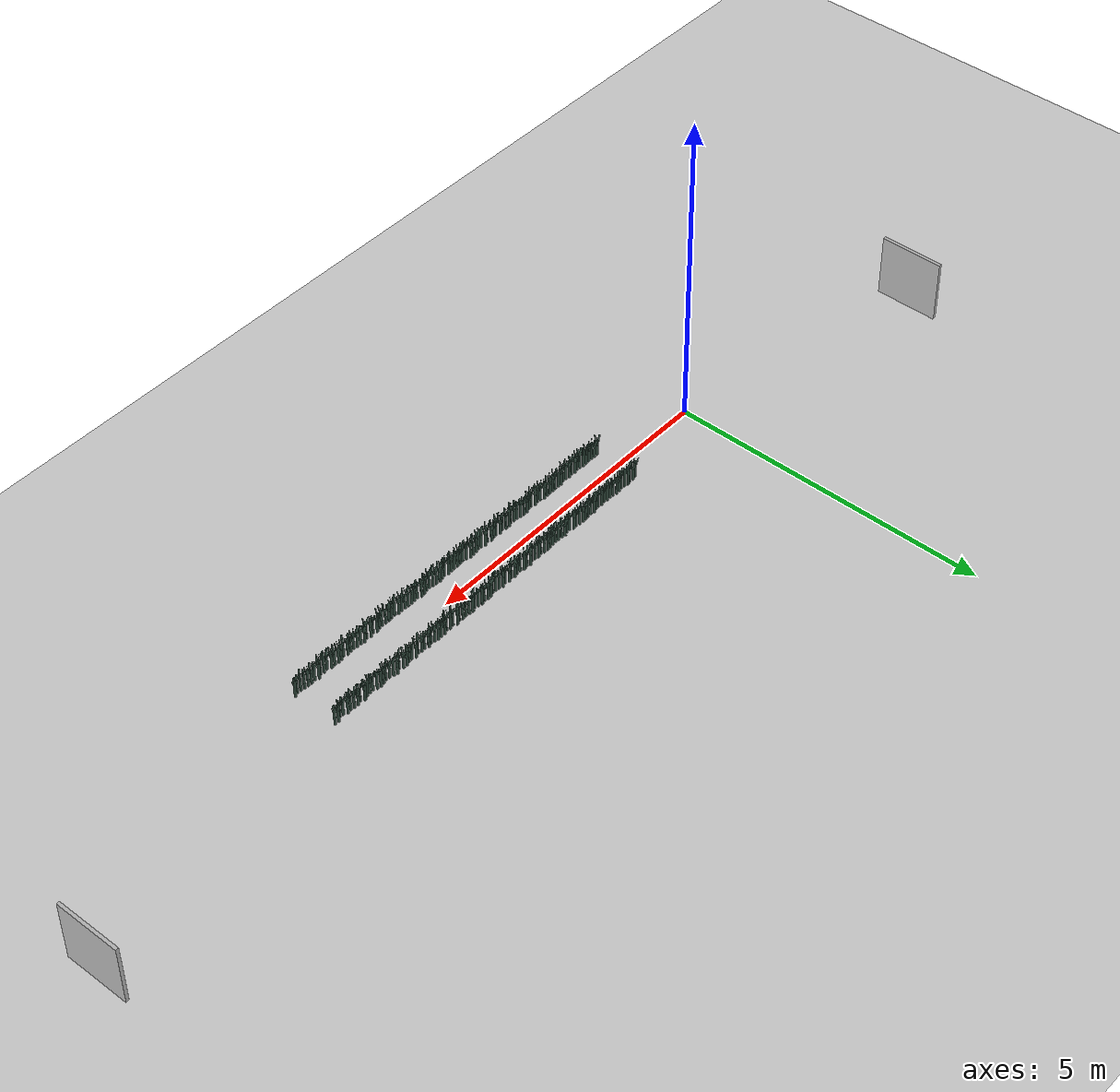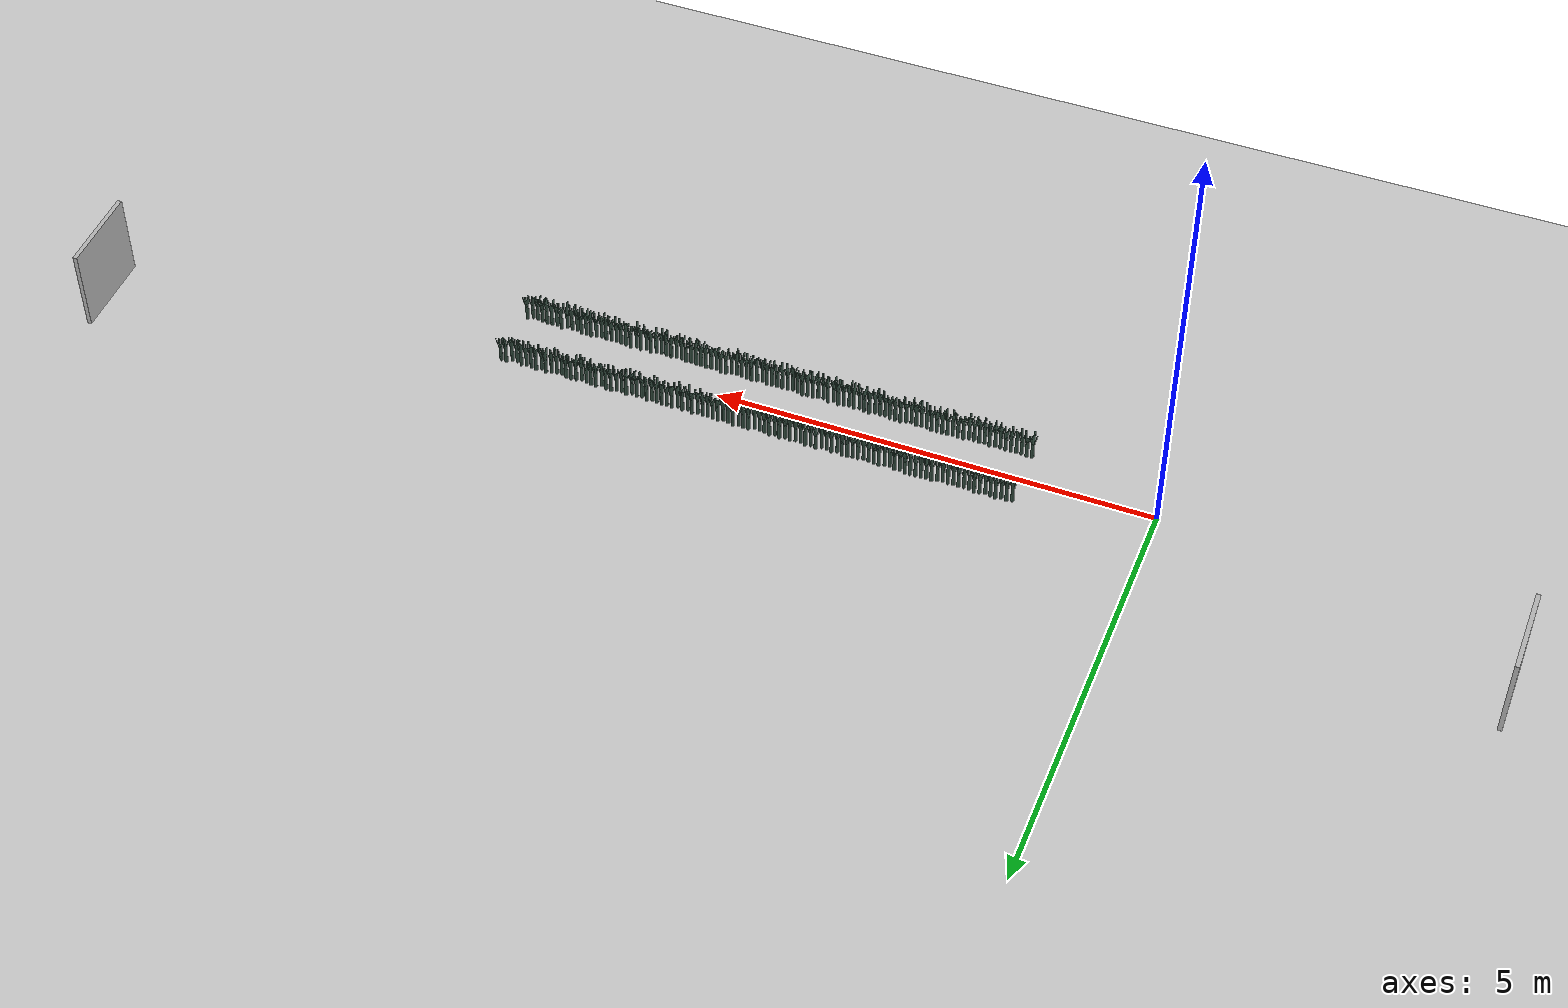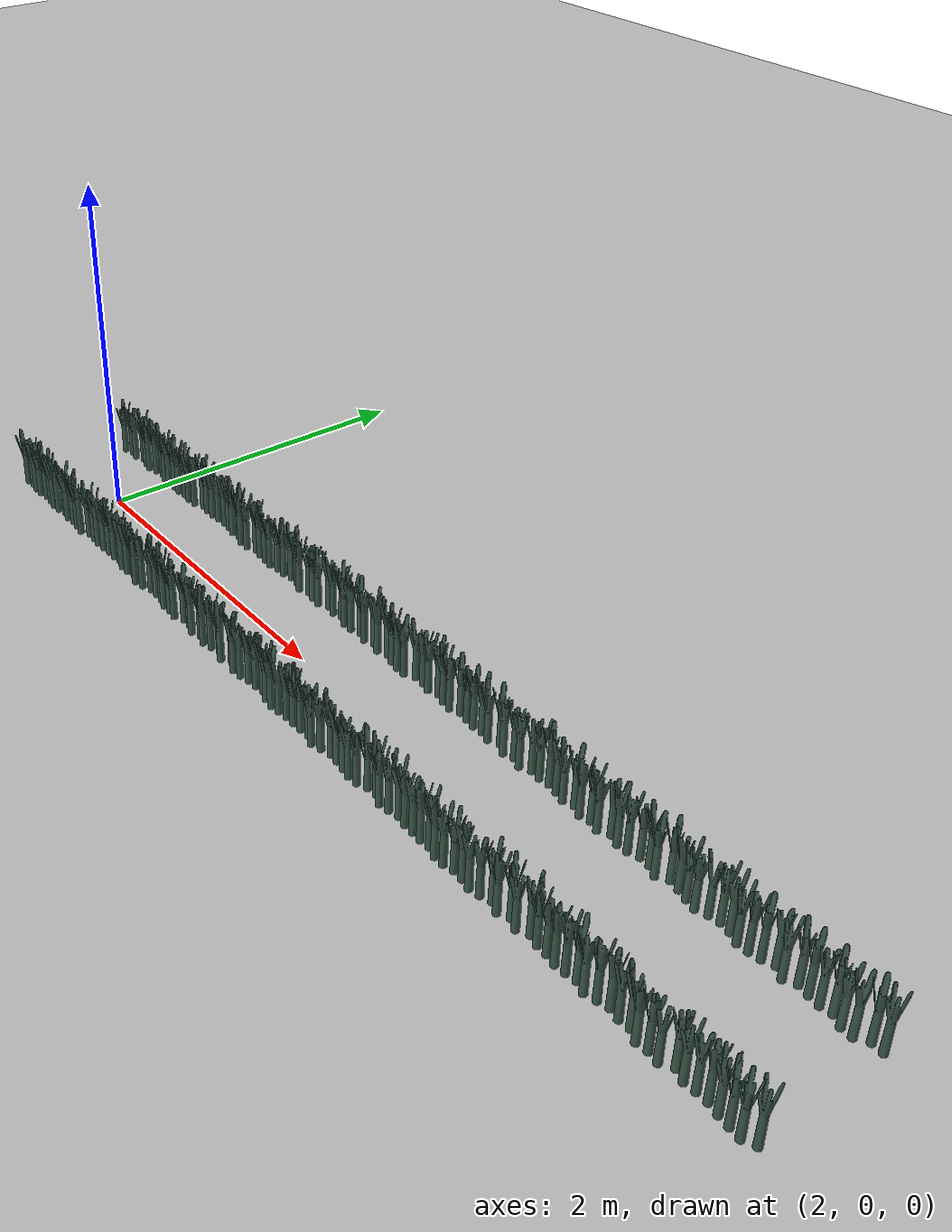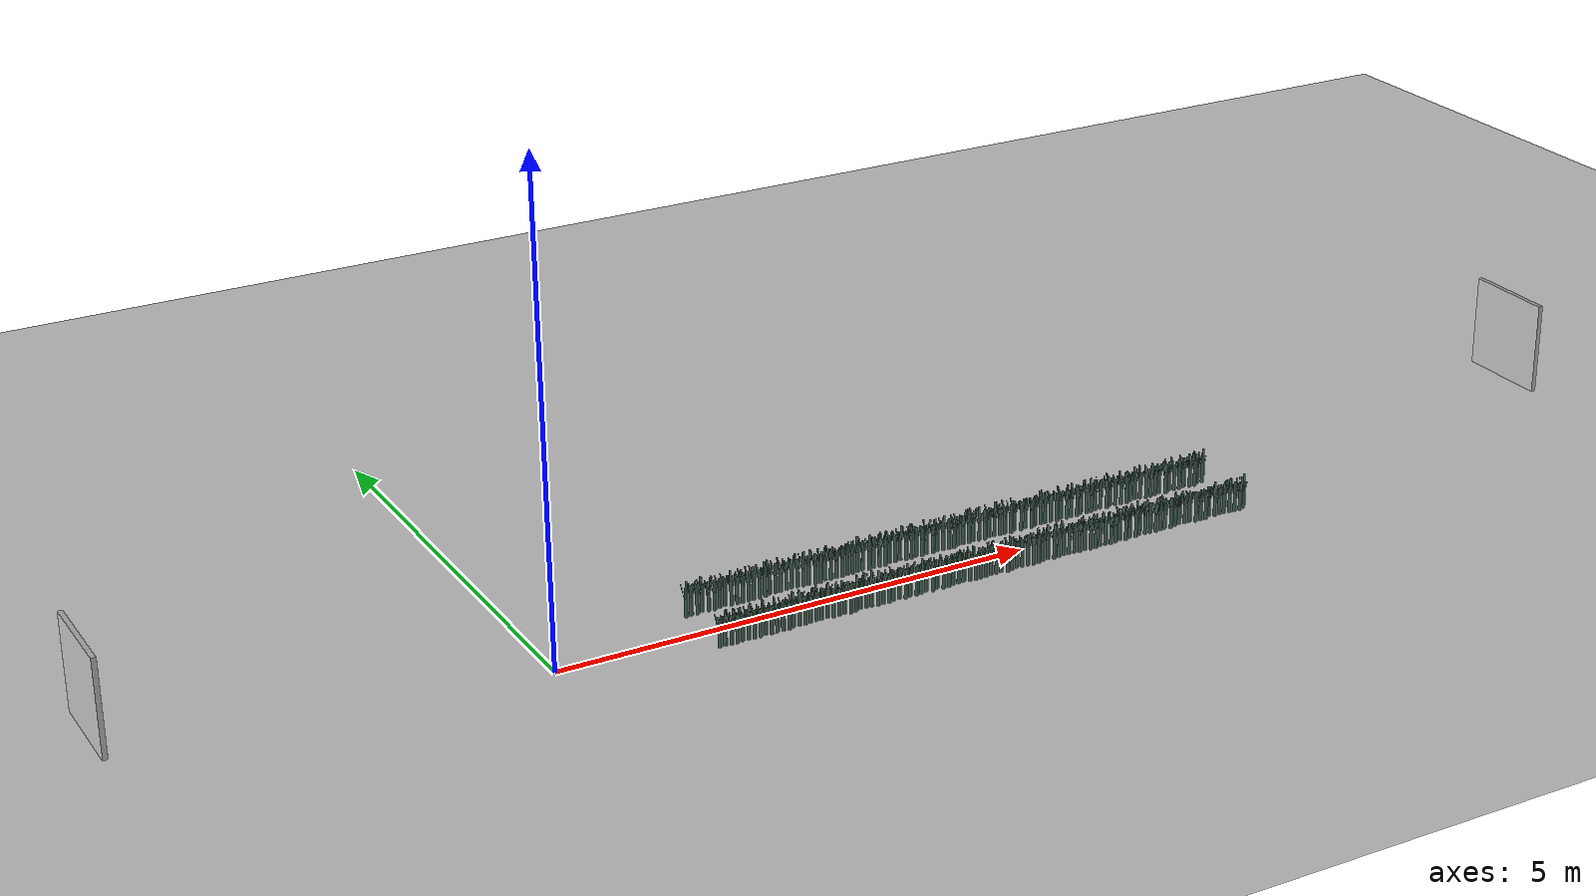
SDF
<sdf version="1.6">
 <world name="default">
  <light name="sun" type="directional">
   <pose>0 0 10 0 -0 0</pose>
   <diffuse>0.5 0.5 0.5 1</diffuse>
   <specular>0.1 0.1 0.1 1</specular>
   <attenuation>
    <range>1000</range>
    <constant>0.9</constant>
    <linear>0.01</linear>
    <quadratic>0.001</quadratic>
   </attenuation>
   <direction>0.9 0.5 -1</direction>
  </light>
  <scene><background>130 200 255 1</background><ambient>130 140 140 1</ambient></scene>
  <include><uri>model://Sign</uri><pose>12 1 0 0 0 0</pose><static>1</static></include>
  <include><uri>model://Sign</uri><pose>-4 1 0 0 0 0</pose><static>1</static></include>
  <include><uri>model://dirt_plane</uri></include>
  <include>
   <uri>model://Leek</uri>
   <pose>1.500000 0.331958 0.15 0 0 -162.377549</pose>
   <static>0</static>
  </include>
  <include><uri>model://Leek</uri><pose>1.560000 0.349821 0.15 0 0 -1.608774</pose><static>0</static></include>
  <include>
   <uri>model://Leek</uri>
   <pose>1.620000 0.337868 0.15 0 0 -109.190535</pose>
   <static>0</static>
  </include>
  <include><uri>model://Leek</uri><pose>1.680000 0.361320 0.15 0 0 101.880763</pose><static>0</static></include>
  <include><uri>model://Leek</uri><pose>1.740000 0.344986 0.15 0 0 -45.128394</pose><static>0</static></include>
  <include>
   <uri>model://Leek</uri>
   <pose>1.800000 0.332855 0.15 0 0 -154.300885</pose>
   <static>0</static>
  </include>
  <include><uri>model://Leek</uri><pose>1.860000 0.348929 0.15 0 0 -9.639895</pose><static>0</static></include>
  <include><uri>model://Leek</uri><pose>1.920000 0.360113 0.15 0 0 91.018937</pose><static>0</static></include>
  <include><uri>model://Leek</uri><pose>1.980000 0.340891 0.15 0 0 -81.981810</pose><static>0</static></include>
  <include>
   <uri>model://Leek</uri>
   <pose>2.040000 0.335884 0.15 0 0 -127.042875</pose>
   <static>0</static>
  </include>
  <include><uri>model://Leek</uri><pose>2.100000 0.341889 0.15 0 0 -72.995884</pose><static>0</static></include>
  <include>
   <uri>model://Leek</uri>
   <pose>2.160000 0.334656 0.15 0 0 -138.097820</pose>
   <static>0</static>
  </include>
  <include><uri>model://Leek</uri><pose>2.220000 0.343781 0.15 0 0 -55.970178</pose><static>0</static></include>
  <include>
   <uri>model://Leek</uri>
   <pose>2.280000 0.334346 0.15 0 0 -140.890404</pose>
   <static>0</static>
  </include>
  <include>
   <uri>model://Leek</uri>
   <pose>2.340000 0.338092 0.15 0 0 -107.171866</pose>
   <static>0</static>
  </include>
  <include><uri>model://Leek</uri><pose>2.400000 0.365549 0.15 0 0 139.940182</pose><static>0</static></include>
  <include><uri>model://Leek</uri><pose>2.460000 0.355899 0.15 0 0 53.088308</pose><static>0</static></include>
  <include><uri>model://Leek</uri><pose>2.520000 0.356512 0.15 0 0 58.607858</pose><static>0</static></include>
  <include><uri>model://Leek</uri><pose>2.580000 0.362932 0.15 0 0 116.389743</pose><static>0</static></include>
  <include><uri>model://Leek</uri><pose>2.640000 0.368002 0.15 0 0 162.014212</pose><static>0</static></include>
  <include><uri>model://Leek</uri><pose>2.700000 0.361540 0.15 0 0 103.857987</pose><static>0</static></include>
  <include><uri>model://Leek</uri><pose>2.760000 0.347323 0.15 0 0 -24.092315</pose><static>0</static></include>
  <include><uri>model://Leek</uri><pose>2.820000 0.356363 0.15 0 0 57.270035</pose><static>0</static></include>
  <include>
   <uri>model://Leek</uri>
   <pose>2.880000 0.330029 0.15 0 0 -179.739443</pose>
   <static>0</static>
  </include>
  <include>
   <uri>model://Leek</uri>
   <pose>2.940000 0.332557 0.15 0 0 -156.990750</pose>
   <static>0</static>
  </include>
  <include><uri>model://Leek</uri><pose>3.000000 0.357606 0.15 0 0 68.456143</pose><static>0</static></include>
  <include><uri>model://Leek</uri><pose>3.060000 0.345399 0.15 0 0 -41.411660</pose><static>0</static></include>
  <include><uri>model://Leek</uri><pose>3.120000 0.342671 0.15 0 0 -65.963355</pose><static>0</static></include>
  <include>
   <uri>model://Leek</uri>
   <pose>3.180000 0.335121 0.15 0 0 -133.915088</pose>
   <static>0</static>
  </include>
  <include><uri>model://Leek</uri><pose>3.240000 0.348412 0.15 0 0 -14.290134</pose><static>0</static></include>
  <include><uri>model://Leek</uri><pose>3.300000 0.349598 0.15 0 0 -3.621645</pose><static>0</static></include>
  <include><uri>model://Leek</uri><pose>3.360000 0.360611 0.15 0 0 95.494968</pose><static>0</static></include>
  <include><uri>model://Leek</uri><pose>3.420000 0.358651 0.15 0 0 77.859124</pose><static>0</static></include>
  <include>
   <uri>model://Leek</uri>
   <pose>3.480000 0.334055 0.15 0 0 -143.501362</pose>
   <static>0</static>
  </include>
  <include><uri>model://Leek</uri><pose>3.540000 0.357474 0.15 0 0 67.262928</pose><static>0</static></include>
  <include><uri>model://Leek</uri><pose>3.600000 0.343648 0.15 0 0 -57.171757</pose><static>0</static></include>
  <include>
   <uri>model://Leek</uri>
   <pose>3.660000 0.336144 0.15 0 0 -124.706322</pose>
   <static>0</static>
  </include>
  <include><uri>model://Leek</uri><pose>3.720000 0.368524 0.15 0 0 166.711849</pose><static>0</static></include>
  <include><uri>model://Leek</uri><pose>3.780000 0.351778 0.15 0 0 16.003892</pose><static>0</static></include>
  <include><uri>model://Leek</uri><pose>3.840000 0.368921 0.15 0 0 170.285761</pose><static>0</static></include>
  <include><uri>model://Leek</uri><pose>3.900000 0.340977 0.15 0 0 -81.209414</pose><static>0</static></include>
  <include><uri>model://Leek</uri><pose>3.960000 0.342471 0.15 0 0 -67.763424</pose><static>0</static></include>
  <include><uri>model://Leek</uri><pose>4.020000 0.360033 0.15 0 0 90.293969</pose><static>0</static></include>
  <include><uri>model://Leek</uri><pose>4.080000 0.340639 0.15 0 0 -84.253350</pose><static>0</static></include>
  <include><uri>model://Leek</uri><pose>4.140000 0.363982 0.15 0 0 125.840385</pose><static>0</static></include>
  <include><uri>model://Leek</uri><pose>4.200000 0.340104 0.15 0 0 -89.062459</pose><static>0</static></include>
  <include><uri>model://Leek</uri><pose>4.260000 0.362912 0.15 0 0 116.208757</pose><static>0</static></include>
  <include><uri>model://Leek</uri><pose>4.320000 0.345215 0.15 0 0 -43.068767</pose><static>0</static></include>
  <include>
   <uri>model://Leek</uri>
   <pose>4.380000 0.334390 0.15 0 0 -140.494066</pose>
   <static>0</static>
  </include>
  <include>
   <uri>model://Leek</uri>
   <pose>4.440000 0.331389 0.15 0 0 -167.496888</pose>
   <static>0</static>
  </include>
  <include><uri>model://Leek</uri><pose>4.500000 0.364296 0.15 0 0 128.662705</pose><static>0</static></include>
  <include><uri>model://Leek</uri><pose>4.560000 0.363139 0.15 0 0 118.255238</pose><static>0</static></include>
  <include><uri>model://Leek</uri><pose>4.620000 0.348579 0.15 0 0 -12.793368</pose><static>0</static></include>
  <include><uri>model://Leek</uri><pose>4.680000 0.368188 0.15 0 0 163.692231</pose><static>0</static></include>
  <include><uri>model://Leek</uri><pose>4.740000 0.350138 0.15 0 0 1.239873</pose><static>0</static></include>
  <include><uri>model://Leek</uri><pose>4.800000 0.342092 0.15 0 0 -71.173729</pose><static>0</static></include>
  <include><uri>model://Leek</uri><pose>4.860000 0.365634 0.15 0 0 140.706934</pose><static>0</static></include>
  <include><uri>model://Leek</uri><pose>4.920000 0.357614 0.15 0 0 68.521997</pose><static>0</static></include>
  <include><uri>model://Leek</uri><pose>4.980000 0.349541 0.15 0 0 -4.130570</pose><static>0</static></include>
  <include><uri>model://Leek</uri><pose>5.040000 0.354396 0.15 0 0 39.566356</pose><static>0</static></include>
  <include><uri>model://Leek</uri><pose>5.100000 0.339833 0.15 0 0 -91.507074</pose><static>0</static></include>
  <include><uri>model://Leek</uri><pose>5.160000 0.369810 0.15 0 0 178.290005</pose><static>0</static></include>
  <include>
   <uri>model://Leek</uri>
   <pose>5.220000 0.335149 0.15 0 0 -133.660004</pose>
   <static>0</static>
  </include>
  <include><uri>model://Leek</uri><pose>5.280000 0.354608 0.15 0 0 41.473766</pose><static>0</static></include>
  <include>
   <uri>model://Leek</uri>
   <pose>5.340000 0.333057 0.15 0 0 -152.488850</pose>
   <static>0</static>
  </include>
  <include><uri>model://Leek</uri><pose>5.400000 0.360945 0.15 0 0 98.503078</pose><static>0</static></include>
  <include><uri>model://Leek</uri><pose>5.460000 0.355556 0.15 0 0 49.999907</pose><static>0</static></include>
  <include><uri>model://Leek</uri><pose>5.520000 0.364221 0.15 0 0 127.991647</pose><static>0</static></include>
  <include><uri>model://Leek</uri><pose>5.580000 0.353849 0.15 0 0 34.645039</pose><static>0</static></include>
  <include><uri>model://Leek</uri><pose>5.640000 0.339142 0.15 0 0 -97.722950</pose><static>0</static></include>
  <include><uri>model://Leek</uri><pose>5.700000 0.359293 0.15 0 0 83.632899</pose><static>0</static></include>
  <include>
   <uri>model://Leek</uri>
   <pose>5.760000 0.333177 0.15 0 0 -151.410016</pose>
   <static>0</static>
  </include>
  <include><uri>model://Leek</uri><pose>5.820000 0.347838 0.15 0 0 -19.455393</pose><static>0</static></include>
  <include>
   <uri>model://Leek</uri>
   <pose>5.880000 0.330176 0.15 0 0 -178.418525</pose>
   <static>0</static>
  </include>
  <include><uri>model://Leek</uri><pose>5.940000 0.361028 0.15 0 0 99.255542</pose><static>0</static></include>
  <include><uri>model://Leek</uri><pose>6.000000 0.339707 0.15 0 0 -92.633675</pose><static>0</static></include>
  <include><uri>model://Leek</uri><pose>6.060000 0.345068 0.15 0 0 -44.391327</pose><static>0</static></include>
  <include><uri>model://Leek</uri><pose>6.120000 0.365785 0.15 0 0 142.067018</pose><static>0</static></include>
  <include><uri>model://Leek</uri><pose>6.180000 0.362862 0.15 0 0 115.759394</pose><static>0</static></include>
  <include>
   <uri>model://Leek</uri>
   <pose>6.240000 0.333465 0.15 0 0 -148.815305</pose>
   <static>0</static>
  </include>
  <include><uri>model://Leek</uri><pose>6.300000 0.369780 0.15 0 0 178.023853</pose><static>0</static></include>
  <include><uri>model://Leek</uri><pose>6.360000 0.358751 0.15 0 0 78.756734</pose><static>0</static></include>
  <include><uri>model://Leek</uri><pose>6.420000 0.342995 0.15 0 0 -63.043686</pose><static>0</static></include>
  <include>
   <uri>model://Leek</uri>
   <pose>6.480000 0.331554 0.15 0 0 -166.016764</pose>
   <static>0</static>
  </include>
  <include><uri>model://Leek</uri><pose>6.540000 0.353837 0.15 0 0 34.536138</pose><static>0</static></include>
  <include><uri>model://Leek</uri><pose>6.600000 0.363213 0.15 0 0 118.915791</pose><static>0</static></include>
  <include><uri>model://Leek</uri><pose>6.660000 0.354338 0.15 0 0 39.043510</pose><static>0</static></include>
  <include>
   <uri>model://Leek</uri>
   <pose>6.720000 0.330425 0.15 0 0 -176.176220</pose>
   <static>0</static>
  </include>
  <include>
   <uri>model://Leek</uri>
   <pose>6.780000 0.335244 0.15 0 0 -132.800979</pose>
   <static>0</static>
  </include>
  <include><uri>model://Leek</uri><pose>6.840000 0.345339 0.15 0 0 -41.948279</pose><static>0</static></include>
  <include><uri>model://Leek</uri><pose>6.900000 0.368654 0.15 0 0 167.883060</pose><static>0</static></include>
  <include>
   <uri>model://Leek</uri>
   <pose>6.960000 0.333902 0.15 0 0 -144.883926</pose>
   <static>0</static>
  </include>
  <include><uri>model://Leek</uri><pose>7.020000 0.365636 0.15 0 0 140.721462</pose><static>0</static></include>
  <include><uri>model://Leek</uri><pose>7.080000 0.355100 0.15 0 0 45.899754</pose><static>0</static></include>
  <include><uri>model://Leek</uri><pose>7.140000 0.349072 0.15 0 0 -8.348102</pose><static>0</static></include>
  <include><uri>model://Leek</uri><pose>7.200000 0.360023 0.15 0 0 90.203614</pose><static>0</static></include>
  <include>
   <uri>model://Leek</uri>
   <pose>7.260000 0.331998 0.15 0 0 -162.018129</pose>
   <static>0</static>
  </include>
  <include>
   <uri>model://Leek</uri>
   <pose>7.320000 0.331327 0.15 0 0 -168.059978</pose>
   <static>0</static>
  </include>
  <include><uri>model://Leek</uri><pose>7.380000 0.369782 0.15 0 0 178.034998</pose><static>0</static></include>
  <include><uri>model://Leek</uri><pose>7.440000 0.366853 0.15 0 0 151.678034</pose><static>0</static></include>
  <include>
   <uri>model://Leek</uri>
   <pose>1.500000 -0.353152 0.15 0 0 -28.366295</pose>
   <static>0</static>
  </include>
  <include><uri>model://Leek</uri><pose>1.560000 -0.346584 0.15 0 0 30.740343</pose><static>0</static></include>
  <include>
   <uri>model://Leek</uri>
   <pose>1.620000 -0.357095 0.15 0 0 -63.854961</pose>
   <static>0</static>
  </include>
  <include>
   <uri>model://Leek</uri>
   <pose>1.680000 -0.357634 0.15 0 0 -68.706231</pose>
   <static>0</static>
  </include>
  <include><uri>model://Leek</uri><pose>1.740000 -0.346857 0.15 0 0 28.285946</pose><static>0</static></include>
  <include><uri>model://Leek</uri><pose>1.800000 -0.349216 0.15 0 0 7.057048</pose><static>0</static></include>
  <include>
   <uri>model://Leek</uri>
   <pose>1.860000 -0.360088 0.15 0 0 -90.795166</pose>
   <static>0</static>
  </include>
  <include>
   <uri>model://Leek</uri>
   <pose>1.920000 -0.358700 0.15 0 0 -78.300626</pose>
   <static>0</static>
  </include>
  <include><uri>model://Leek</uri><pose>1.980000 -0.342828 0.15 0 0 64.549362</pose><static>0</static></include>
  <include>
   <uri>model://Leek</uri>
   <pose>2.040000 -0.358694 0.15 0 0 -78.243596</pose>
   <static>0</static>
  </include>
  <include>
   <uri>model://Leek</uri>
   <pose>2.100000 -0.351182 0.15 0 0 -10.641938</pose>
   <static>0</static>
  </include>
  <include>
   <uri>model://Leek</uri>
   <pose>2.160000 -0.356692 0.15 0 0 -60.225771</pose>
   <static>0</static>
  </include>
  <include>
   <uri>model://Leek</uri>
   <pose>2.220000 -0.365000 0.15 0 0 -134.997599</pose>
   <static>0</static>
  </include>
  <include><uri>model://Leek</uri><pose>2.280000 -0.340074 0.15 0 0 89.334646</pose><static>0</static></include>
  <include><uri>model://Leek</uri><pose>2.340000 -0.340270 0.15 0 0 87.571788</pose><static>0</static></include>
  <include><uri>model://Leek</uri><pose>2.400000 -0.346832 0.15 0 0 28.515702</pose><static>0</static></include>
  <include><uri>model://Leek</uri><pose>2.460000 -0.341725 0.15 0 0 74.473792</pose><static>0</static></include>
  <include>
   <uri>model://Leek</uri>
   <pose>2.520000 -0.338004 0.15 0 0 107.967535</pose>
   <static>0</static>
  </include>
  <include>
   <uri>model://Leek</uri>
   <pose>2.580000 -0.338359 0.15 0 0 104.767441</pose>
   <static>0</static>
  </include>
  <include>
   <uri>model://Leek</uri>
   <pose>2.640000 -0.334012 0.15 0 0 143.892384</pose>
   <static>0</static>
  </include>
  <include>
   <uri>model://Leek</uri>
   <pose>2.700000 -0.353610 0.15 0 0 -32.492434</pose>
   <static>0</static>
  </include>
  <include>
   <uri>model://Leek</uri>
   <pose>2.760000 -0.352219 0.15 0 0 -19.973131</pose>
   <static>0</static>
  </include>
  <include><uri>model://Leek</uri><pose>2.820000 -0.343970 0.15 0 0 54.266593</pose><static>0</static></include>
  <include>
   <uri>model://Leek</uri>
   <pose>2.880000 -0.367133 0.15 0 0 -154.199744</pose>
   <static>0</static>
  </include>
  <include>
   <uri>model://Leek</uri>
   <pose>2.940000 -0.355660 0.15 0 0 -50.943294</pose>
   <static>0</static>
  </include>
  <include>
   <uri>model://Leek</uri>
   <pose>3.000000 -0.334379 0.15 0 0 140.592710</pose>
   <static>0</static>
  </include>
  <include>
   <uri>model://Leek</uri>
   <pose>3.060000 -0.335165 0.15 0 0 133.519327</pose>
   <static>0</static>
  </include>
  <include>
   <uri>model://Leek</uri>
   <pose>3.120000 -0.337313 0.15 0 0 114.181363</pose>
   <static>0</static>
  </include>
  <include>
   <uri>model://Leek</uri>
   <pose>3.180000 -0.357748 0.15 0 0 -69.732031</pose>
   <static>0</static>
  </include>
  <include>
   <uri>model://Leek</uri>
   <pose>3.240000 -0.353771 0.15 0 0 -33.941618</pose>
   <static>0</static>
  </include>
  <include>
   <uri>model://Leek</uri>
   <pose>3.300000 -0.363671 0.15 0 0 -123.037258</pose>
   <static>0</static>
  </include>
  <include>
   <uri>model://Leek</uri>
   <pose>3.360000 -0.335785 0.15 0 0 127.936202</pose>
   <static>0</static>
  </include>
  <include>
   <uri>model://Leek</uri>
   <pose>3.420000 -0.336250 0.15 0 0 123.752061</pose>
   <static>0</static>
  </include>
  <include>
   <uri>model://Leek</uri>
   <pose>3.480000 -0.360567 0.15 0 0 -95.099144</pose>
   <static>0</static>
  </include>
  <include><uri>model://Leek</uri><pose>3.540000 -0.340396 0.15 0 0 86.433545</pose><static>0</static></include>
  <include>
   <uri>model://Leek</uri>
   <pose>3.600000 -0.361569 0.15 0 0 -104.125037</pose>
   <static>0</static>
  </include>
  <include><uri>model://Leek</uri><pose>3.660000 -0.348678 0.15 0 0 11.897209</pose><static>0</static></include>
  <include>
   <uri>model://Leek</uri>
   <pose>3.720000 -0.332736 0.15 0 0 155.372478</pose>
   <static>0</static>
  </include>
  <include>
   <uri>model://Leek</uri>
   <pose>3.780000 -0.362942 0.15 0 0 -116.480573</pose>
   <static>0</static>
  </include>
  <include>
   <uri>model://Leek</uri>
   <pose>3.840000 -0.332697 0.15 0 0 155.728737</pose>
   <static>0</static>
  </include>
  <include>
   <uri>model://Leek</uri>
   <pose>3.900000 -0.360081 0.15 0 0 -90.725796</pose>
   <static>0</static>
  </include>
  <include>
   <uri>model://Leek</uri>
   <pose>3.960000 -0.357299 0.15 0 0 -65.694940</pose>
   <static>0</static>
  </include>
  <include><uri>model://Leek</uri><pose>4.020000 -0.343308 0.15 0 0 60.231516</pose><static>0</static></include>
  <include><uri>model://Leek</uri><pose>4.080000 -0.339038 0.15 0 0 98.661423</pose><static>0</static></include>
  <include>
   <uri>model://Leek</uri>
   <pose>4.140000 -0.332899 0.15 0 0 153.910727</pose>
   <static>0</static>
  </include>
  <include>
   <uri>model://Leek</uri>
   <pose>4.200000 -0.354882 0.15 0 0 -43.937443</pose>
   <static>0</static>
  </include>
  <include>
   <uri>model://Leek</uri>
   <pose>4.260000 -0.365142 0.15 0 0 -136.276095</pose>
   <static>0</static>
  </include>
  <include>
   <uri>model://Leek</uri>
   <pose>4.320000 -0.358673 0.15 0 0 -78.059040</pose>
   <static>0</static>
  </include>
  <include>
   <uri>model://Leek</uri>
   <pose>4.380000 -0.351518 0.15 0 0 -13.662108</pose>
   <static>0</static>
  </include>
  <include>
   <uri>model://Leek</uri>
   <pose>4.440000 -0.351310 0.15 0 0 -11.788084</pose>
   <static>0</static>
  </include>
  <include><uri>model://Leek</uri><pose>4.500000 -0.349689 0.15 0 0 2.802274</pose><static>0</static></include>
  <include><uri>model://Leek</uri><pose>4.560000 -0.345376 0.15 0 0 41.618699</pose><static>0</static></include>
  <include>
   <uri>model://Leek</uri>
   <pose>4.620000 -0.369530 0.15 0 0 -175.769374</pose>
   <static>0</static>
  </include>
  <include>
   <uri>model://Leek</uri>
   <pose>4.680000 -0.353987 0.15 0 0 -35.880041</pose>
   <static>0</static>
  </include>
  <include>
   <uri>model://Leek</uri>
   <pose>4.740000 -0.337096 0.15 0 0 116.139523</pose>
   <static>0</static>
  </include>
  <include><uri>model://Leek</uri><pose>4.800000 -0.343355 0.15 0 0 59.804162</pose><static>0</static></include>
  <include>
   <uri>model://Leek</uri>
   <pose>4.860000 -0.351632 0.15 0 0 -14.687835</pose>
   <static>0</static>
  </include>
  <include>
   <uri>model://Leek</uri>
   <pose>4.920000 -0.364302 0.15 0 0 -128.718708</pose>
   <static>0</static>
  </include>
  <include>
   <uri>model://Leek</uri>
   <pose>4.980000 -0.359793 0.15 0 0 -88.138952</pose>
   <static>0</static>
  </include>
  <include>
   <uri>model://Leek</uri>
   <pose>5.040000 -0.337140 0.15 0 0 115.736811</pose>
   <static>0</static>
  </include>
  <include>
   <uri>model://Leek</uri>
   <pose>5.100000 -0.331725 0.15 0 0 164.479471</pose>
   <static>0</static>
  </include>
  <include>
   <uri>model://Leek</uri>
   <pose>5.160000 -0.360367 0.15 0 0 -93.302842</pose>
   <static>0</static>
  </include>
  <include><uri>model://Leek</uri><pose>5.220000 -0.350690 0.15 0 0 -6.208980</pose><static>0</static></include>
  <include>
   <uri>model://Leek</uri>
   <pose>5.280000 -0.337964 0.15 0 0 108.321274</pose>
   <static>0</static>
  </include>
  <include><uri>model://Leek</uri><pose>5.340000 -0.348171 0.15 0 0 16.464143</pose><static>0</static></include>
  <include><uri>model://Leek</uri><pose>5.400000 -0.349466 0.15 0 0 4.803935</pose><static>0</static></include>
  <include>
   <uri>model://Leek</uri>
   <pose>5.460000 -0.352891 0.15 0 0 -26.022759</pose>
   <static>0</static>
  </include>
  <include><uri>model://Leek</uri><pose>5.520000 -0.347925 0.15 0 0 18.673046</pose><static>0</static></include>
  <include>
   <uri>model://Leek</uri>
   <pose>5.580000 -0.367023 0.15 0 0 -153.204733</pose>
   <static>0</static>
  </include>
  <include>
   <uri>model://Leek</uri>
   <pose>5.640000 -0.365879 0.15 0 0 -142.909639</pose>
   <static>0</static>
  </include>
  <include>
   <uri>model://Leek</uri>
   <pose>5.700000 -0.352747 0.15 0 0 -24.721085</pose>
   <static>0</static>
  </include>
  <include>
   <uri>model://Leek</uri>
   <pose>5.760000 -0.355746 0.15 0 0 -51.710015</pose>
   <static>0</static>
  </include>
  <include>
   <uri>model://Leek</uri>
   <pose>5.820000 -0.368492 0.15 0 0 -166.425908</pose>
   <static>0</static>
  </include>
  <include>
   <uri>model://Leek</uri>
   <pose>5.880000 -0.357127 0.15 0 0 -64.143967</pose>
   <static>0</static>
  </include>
  <include>
   <uri>model://Leek</uri>
   <pose>5.940000 -0.336713 0.15 0 0 119.586999</pose>
   <static>0</static>
  </include>
  <include>
   <uri>model://Leek</uri>
   <pose>6.000000 -0.363322 0.15 0 0 -119.897012</pose>
   <static>0</static>
  </include>
  <include>
   <uri>model://Leek</uri>
   <pose>6.060000 -0.334569 0.15 0 0 138.881693</pose>
   <static>0</static>
  </include>
  <include>
   <uri>model://Leek</uri>
   <pose>6.120000 -0.361520 0.15 0 0 -103.675871</pose>
   <static>0</static>
  </include>
  <include>
   <uri>model://Leek</uri>
   <pose>6.180000 -0.330461 0.15 0 0 175.848021</pose>
   <static>0</static>
  </include>
  <include><uri>model://Leek</uri><pose>6.240000 -0.347131 0.15 0 0 25.821044</pose><static>0</static></include>
  <include><uri>model://Leek</uri><pose>6.300000 -0.347489 0.15 0 0 22.599571</pose><static>0</static></include>
  <include>
   <uri>model://Leek</uri>
   <pose>6.360000 -0.358481 0.15 0 0 -76.327422</pose>
   <static>0</static>
  </include>
  <include>
   <uri>model://Leek</uri>
   <pose>6.420000 -0.352838 0.15 0 0 -25.540686</pose>
   <static>0</static>
  </include>
  <include><uri>model://Leek</uri><pose>6.480000 -0.343500 0.15 0 0 58.503656</pose><static>0</static></include>
  <include>
   <uri>model://Leek</uri>
   <pose>6.540000 -0.364897 0.15 0 0 -134.070873</pose>
   <static>0</static>
  </include>
  <include><uri>model://Leek</uri><pose>6.600000 -0.347975 0.15 0 0 18.225154</pose><static>0</static></include>
  <include>
   <uri>model://Leek</uri>
   <pose>6.660000 -0.331993 0.15 0 0 162.064650</pose>
   <static>0</static>
  </include>
  <include><uri>model://Leek</uri><pose>6.720000 -0.344613 0.15 0 0 48.479023</pose><static>0</static></include>
  <include>
   <uri>model://Leek</uri>
   <pose>6.780000 -0.338501 0.15 0 0 103.488632</pose>
   <static>0</static>
  </include>
  <include>
   <uri>model://Leek</uri>
   <pose>6.840000 -0.368434 0.15 0 0 -165.910104</pose>
   <static>0</static>
  </include>
  <include>
   <uri>model://Leek</uri>
   <pose>6.900000 -0.360024 0.15 0 0 -90.220031</pose>
   <static>0</static>
  </include>
  <include>
   <uri>model://Leek</uri>
   <pose>6.960000 -0.368488 0.15 0 0 -166.392155</pose>
   <static>0</static>
  </include>
  <include>
   <uri>model://Leek</uri>
   <pose>7.020000 -0.331376 0.15 0 0 167.614952</pose>
   <static>0</static>
  </include>
  <include>
   <uri>model://Leek</uri>
   <pose>7.080000 -0.354770 0.15 0 0 -42.927447</pose>
   <static>0</static>
  </include>
  <include><uri>model://Leek</uri><pose>7.140000 -0.347420 0.15 0 0 23.216938</pose><static>0</static></include>
  <include><uri>model://Leek</uri><pose>7.200000 -0.345934 0.15 0 0 36.594474</pose><static>0</static></include>
  <include>
   <uri>model://Leek</uri>
   <pose>7.260000 -0.356881 0.15 0 0 -61.927110</pose>
   <static>0</static>
  </include>
  <include>
   <uri>model://Leek</uri>
   <pose>7.320000 -0.362999 0.15 0 0 -116.994072</pose>
   <static>0</static>
  </include>
  <include>
   <uri>model://Leek</uri>
   <pose>7.380000 -0.369484 0.15 0 0 -175.354693</pose>
   <static>0</static>
  </include>
  <include><uri>model://Leek</uri><pose>7.440000 -0.341517 0.15 0 0 76.347905</pose><static>0</static></include>
 </world>
</sdf>

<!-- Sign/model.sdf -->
<sdf version='1.6'>
  <model name='Sign'>
    <link name='link'>
      <pose frame=''>0 0 0 0 -0 0</pose>
      <inertial>
        <mass>1</mass>
        <inertia>
          <ixx>0.166667</ixx>
          <ixy>0</ixy>
          <ixz>0</ixz>
          <iyy>0.166667</iyy>
          <iyz>0</iyz>
          <izz>0.166667</izz>
        </inertia>
        <pose frame=''>0 0 0 0 -0 0</pose>
      </inertial>
      <self_collide>0</self_collide>
      <kinematic>0</kinematic>
      <gravity>1</gravity>
      <visual name='visual'>
        <geometry>
          <box>
            <size>1 0.05 1</size>
          </box>
        </geometry>
        <material>
          <script>
            <uri>model://ground_plane/materials/scripts/my_ground_plane.material</uri>
            <uri>model://ground_plane/materials/textures</uri>
            <name>my_ground_plane/NaioLogo</name>
          </script>
        </material>
        <pose frame=''>0 0 0.5 0 -0 1.57</pose>
        <cast_shadows>1</cast_shadows>
        <transparency>0</transparency>
      </visual>
    </link>
    <static>1</static>
    <allow_auto_disable>1</allow_auto_disable>
  </model>
</sdf>

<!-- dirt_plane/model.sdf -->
<sdf version="1.4">
<model name="dirt_plane">
  <static>true</static>
    <link name="link">
      <collision name="collision">
        <geometry>
          <plane>
            <normal>0 0 1</normal>
            <size>100 100</size>
          </plane>
        </geometry>
        <surface>
          <friction>
            <ode>
              <mu>0.99</mu>
              <mu2>0.99</mu2>
            </ode>
          </friction>
        </surface>
      </collision>
      <visual name="visual">
        <cast_shadows>false</cast_shadows>
        <geometry>
          <plane>
            <normal>0 0 1</normal>
            <size>100 100</size>
          </plane>
        </geometry>
        <material>
          <script>
            <uri>model://ground_plane/materials/scripts/my_ground_plane.material</uri>
            <uri>model://ground_plane/materials/textures</uri>
            <name>my_ground_plane/Dirt</name>
          </script>
        </material>
      </visual>
    </link>
  </model>
</sdf>

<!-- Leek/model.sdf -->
<sdf version='1.6'>
  <model name='Leek'>
    <link name='link'>
      <pose frame=''>0 0 0 0 -0 0</pose>
      <inertial>
        <mass>1</mass>
        <inertia>
          <ixx>0.145833</ixx>
          <ixy>0</ixy>
          <ixz>0</ixz>
          <iyy>0.145833</iyy>
          <iyz>0</iyz>
          <izz>0.125</izz>
        </inertia>
        <pose frame=''>0 0 0 0 -0 0</pose>
      </inertial>
      <self_collide>0</self_collide>
      <kinematic>0</kinematic>
      <gravity>1</gravity>
      <visual name='visual'>
        <geometry>
          <mesh>
            <uri>model://Leek/Poireau.dae</uri>
            <scale>1 1 1</scale>
          </mesh>
        </geometry>
        <material>
          <script>
            <name>Gazebo/Grey</name>
            <uri>file://media/materials/scripts/gazebo.material</uri>
          </script>
          <ambient>0.3 0.6 0.5 0</ambient>
          <diffuse>0.2 0.3 0.25 0</diffuse>
          <specular>0 0 0 1</specular>
          <emissive>0 0 0 1</emissive>
          <shader type='vertex'>
            <normal_map>__default__</normal_map>
          </shader>
        </material>
        <pose frame=''>0 0 -0.08 0 -0 0</pose>
        <cast_shadows>1</cast_shadows>
        <transparency>0</transparency>
      </visual>
      <collision name='collision'>
        <laser_retro>0</laser_retro>
        <max_contacts>10</max_contacts>
        <pose frame=''>0 0 0 0 -0 0</pose>
        <geometry>
          <cylinder>
            <radius>0.02</radius>
            <length>0.25</length>
          </cylinder>
        </geometry>
        <surface>
          <friction>
            <ode>
              <mu>1</mu>
              <mu2>1</mu2>
              <fdir1>0 0 0</fdir1>
              <slip1>0</slip1>
              <slip2>0</slip2>
            </ode>
            <torsional>
              <coefficient>1</coefficient>
              <patch_radius>0</patch_radius>
              <surface_radius>0</surface_radius>
              <use_patch_radius>1</use_patch_radius>
              <ode>
                <slip>0</slip>
              </ode>
            </torsional>
          </friction>
          <bounce>
            <restitution_coefficient>0</restitution_coefficient>
            <threshold>1e+06</threshold>
          </bounce>
          <contact>
            <collide_without_contact>0</collide_without_contact>
            <collide_without_contact_bitmask>1</collide_without_contact_bitmask>
            <collide_bitmask>1</collide_bitmask>
            <ode>
              <soft_cfm>0</soft_cfm>
              <soft_erp>0.2</soft_erp>
              <kp>1e+13</kp>
              <kd>1</kd>
              <max_vel>0.01</max_vel>
              <min_depth>0</min_depth>
            </ode>
            <bullet>
              <split_impulse>1</split_impulse>
              <split_impulse_penetration_threshold>-0.01</split_impulse_penetration_threshold>
              <soft_cfm>0</soft_cfm>
              <soft_erp>0.2</soft_erp>
              <kp>1e+13</kp>
              <kd>1</kd>
            </bullet>
          </contact>
        </surface>
      </collision>
    </link>
    <static>0</static>
    <allow_auto_disable>1</allow_auto_disable>
  </model>
</sdf>
